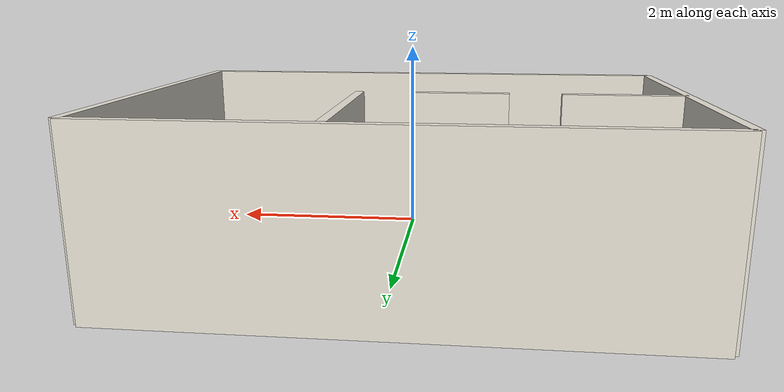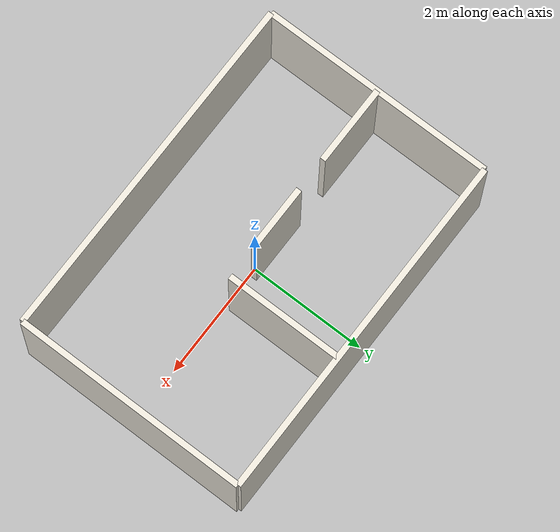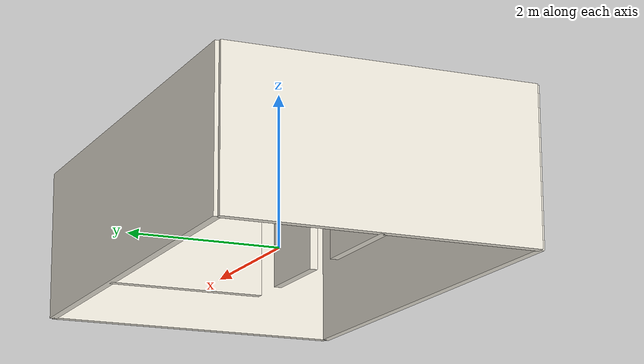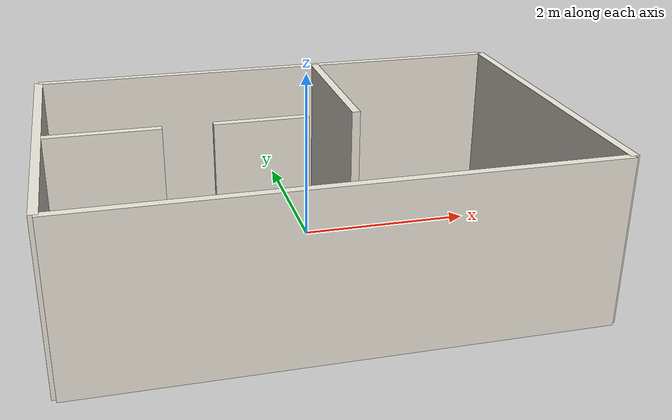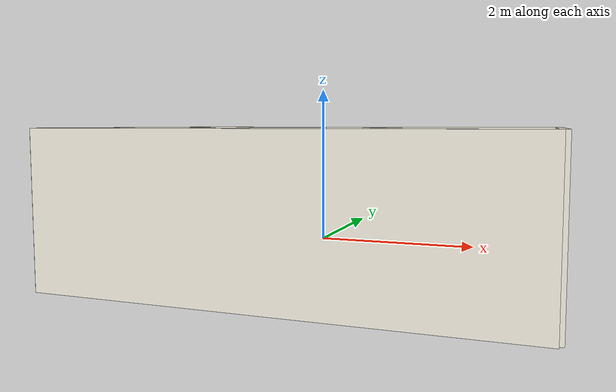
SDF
<?xml version="1.0"?>
<sdf version="1.9">
  <model name="house">
    <static>true</static>
    <link name="link">

      <collision name="w">
        <pose>-3.0 0.0 0.5 0 0 0</pose>
        <geometry><box><size>0.1 4.0 2.0</size></box></geometry>
      </collision>
      <visual name="w_visual">
        <pose>-3.0 0.0 0.5 0 0 0</pose>
        <geometry><box><size>0.1 4.0 2.0</size></box></geometry>
        <material>
          <ambient>0.85 0.83 0.78 1</ambient>
          <diffuse>0.92 0.90 0.85 1</diffuse>
        </material>
      </visual>

      <collision name="e">
        <pose>3.0 0.0 0.5 0 0 0</pose>
        <geometry><box><size>0.1 4.0 2.0</size></box></geometry>
      </collision>
      <visual name="e_visual">
        <pose>3.0 0.0 0.5 0 0 0</pose>
        <geometry><box><size>0.1 4.0 2.0</size></box></geometry>
        <material>
          <ambient>0.85 0.83 0.78 1</ambient>
          <diffuse>0.92 0.90 0.85 1</diffuse>
        </material>
      </visual>

      <collision name="n">
        <pose>0.0 2.0 0.5 0 0 0</pose>
        <geometry><box><size>6.0 0.1 2.0</size></box></geometry>
      </collision>
      <visual name="n_visual">
        <pose>0.0 2.0 0.5 0 0 0</pose>
        <geometry><box><size>6.0 0.1 2.0</size></box></geometry>
        <material>
          <ambient>0.85 0.83 0.78 1</ambient>
          <diffuse>0.92 0.90 0.85 1</diffuse>
        </material>
      </visual>

      <collision name="s">
        <pose>0.0 -2.0 0.5 0 0 0</pose>
        <geometry><box><size>6.0 0.1 2.0</size></box></geometry>
      </collision>
      <visual name="s_visual">
        <pose>0.0 -2.0 0.5 0 0 0</pose>
        <geometry><box><size>6.0 0.1 2.0</size></box></geometry>
        <material>
          <ambient>0.85 0.83 0.78 1</ambient>
          <diffuse>0.92 0.90 0.85 1</diffuse>
        </material>
      </visual>

      <collision name="small_e">
        <pose>0.6 1.0 0.5 0 0 0</pose>
        <geometry><box><size>0.1 2.0 2.0</size></box></geometry>
      </collision>
      <visual name="small_e_visual">
        <pose>0.6 1.0 0.5 0 0 0</pose>
        <geometry><box><size>0.1 2.0 2.0</size></box></geometry>
        <material>
          <ambient>0.85 0.83 0.78 1</ambient>
          <diffuse>0.92 0.90 0.85 1</diffuse>
        </material>
      </visual>

      <collision name="door1">
        <pose>-2.325 0.0 0.5 0 0 0</pose>
        <geometry><box><size>1.35 0.1 2.0</size></box></geometry>
      </collision>
      <visual name="door1_visual">
        <pose>-2.325 0.0 0.5 0 0 0</pose>
        <geometry><box><size>1.35 0.1 2.0</size></box></geometry>
        <material>
          <ambient>0.85 0.83 0.78 1</ambient>
          <diffuse>0.92 0.90 0.85 1</diffuse>
        </material>
      </visual>

      <collision name="door2">
        <pose>-0.525 0.0 0.5 0 0 0</pose>
        <geometry><box><size>1.1 0.1 2.0</size></box></geometry>
      </collision>
      <visual name="door2_visual">
        <pose>-0.525 0.0 0.5 0 0 0</pose>
        <geometry><box><size>1.1 0.1 2.0</size></box></geometry>
        <material>
          <ambient>0.85 0.83 0.78 1</ambient>
          <diffuse>0.92 0.90 0.85 1</diffuse>
        </material>
      </visual>

    </link>
  </model>
</sdf>
